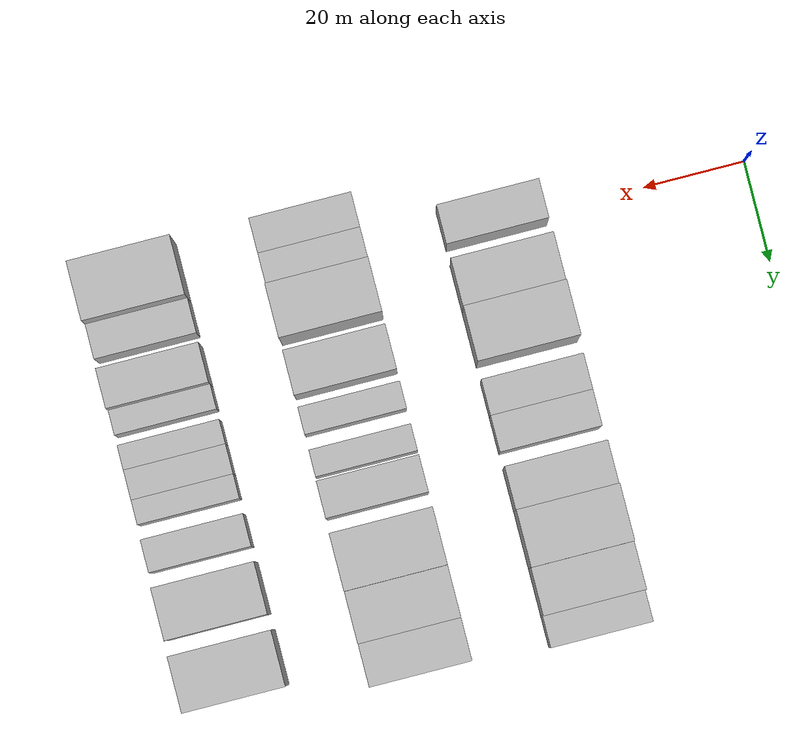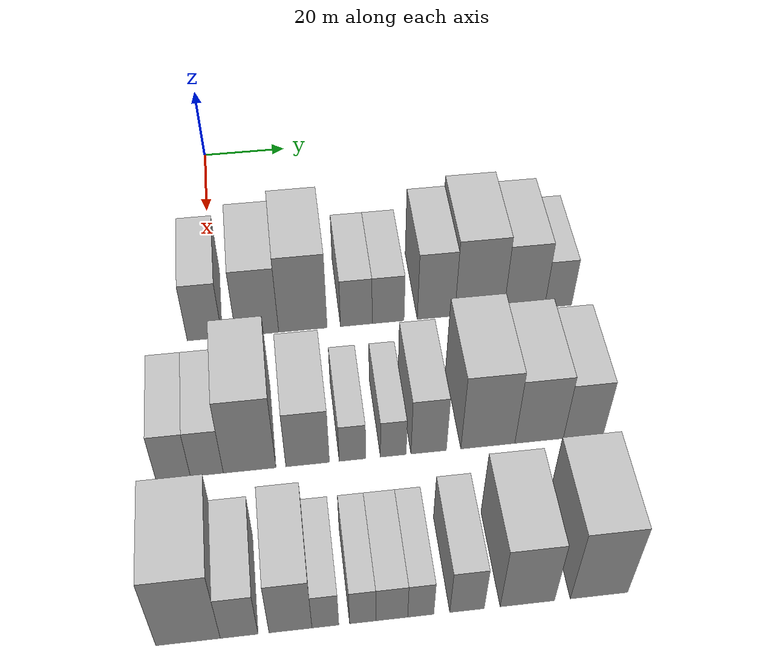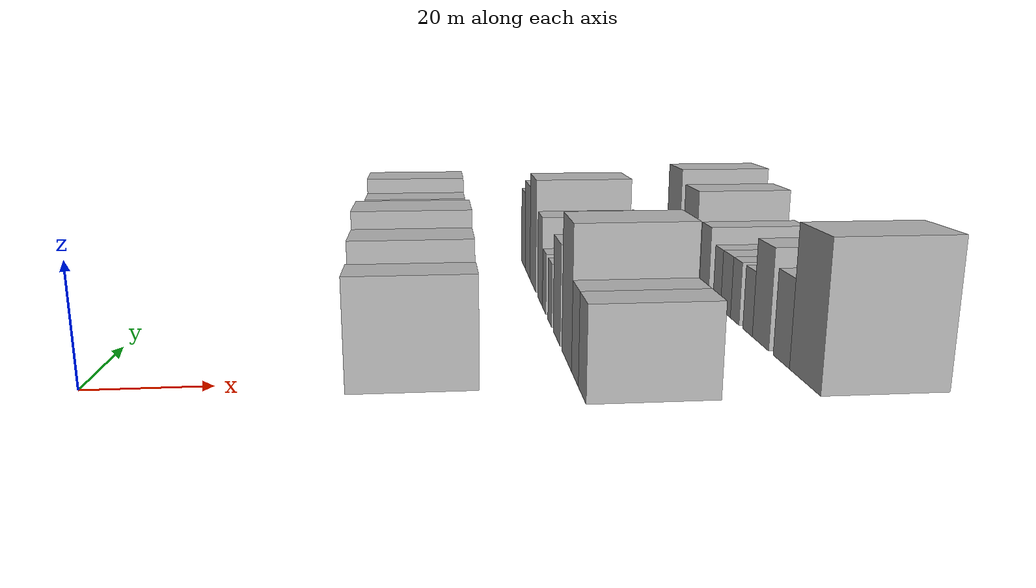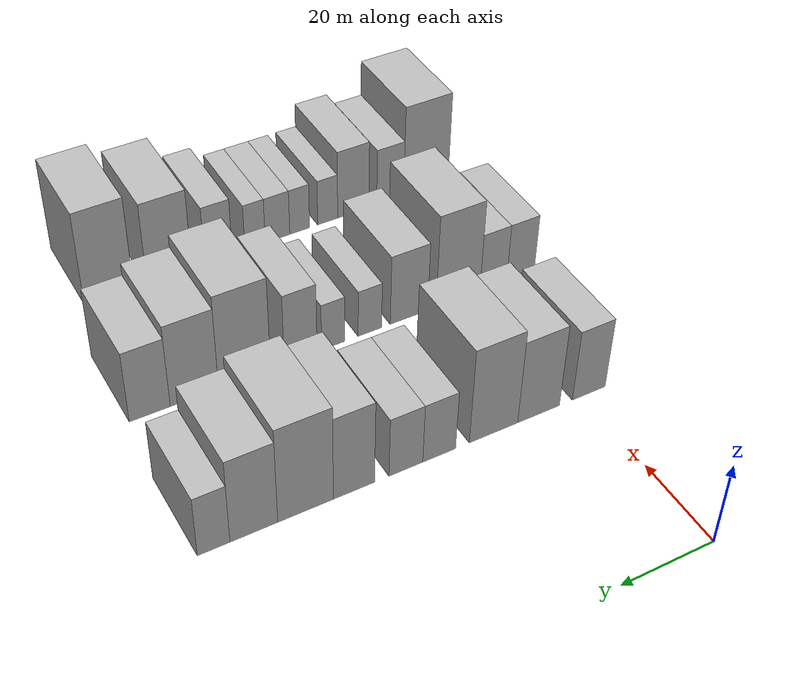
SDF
<sdf version="1.6">
 <world name="default">
  <model name="building_39">
   <static>1</static>
   <pose>50.0000 -1.3939 0 0.000000 0.000000 0.000000</pose>
   <link name="link">
    <pose>0 0 9.00 0 0 0</pose>
    <collision name="collision"><geometry><box><size>20.0000 7.6644 18.0000</size></box></geometry></collision>
    <visual name="visual">
     <cast_shadows>0</cast_shadows>
     <geometry><box><size>20.0000 7.6644 18.0000</size></box></geometry>
     <material>
      <script>
       <uri>model://HANNAS_wall/materials/scripts</uri>
       <uri>model://HANNAS_wall/materials/textures</uri>
       <name>vrc/HANNAS_wall</name>
      </script>
     </material>
    </visual>
   </link>
  </model>
  <model name="building_40">
   <static>1</static>
   <pose>50.0000 10.1830 0 0.000000 0.000000 0.000000</pose>
   <link name="link">
    <pose>0 0 10.50 0 0 0</pose>
    <collision name="collision"><geometry><box><size>20.0000 9.4892 21.0000</size></box></geometry></collision>
    <visual name="visual">
     <cast_shadows>0</cast_shadows>
     <geometry><box><size>20.0000 9.4892 21.0000</size></box></geometry>
     <material>
      <script>
       <uri>model://HANNAS_wall/materials/scripts</uri>
       <uri>model://HANNAS_wall/materials/textures</uri>
       <name>vrc/HANNAS_wall</name>
      </script>
     </material>
    </visual>
   </link>
  </model>
  <model name="building_41">
   <static>1</static>
   <pose>50.0000 20.3024 0 0.000000 0.000000 0.000000</pose>
   <link name="link">
    <pose>0 0 12.00 0 0 0</pose>
    <collision name="collision"><geometry><box><size>20.0000 10.7497 24.0000</size></box></geometry></collision>
    <visual name="visual">
     <cast_shadows>0</cast_shadows>
     <geometry><box><size>20.0000 10.7497 24.0000</size></box></geometry>
     <material>
      <script>
       <uri>model://HANNAS_wall/materials/scripts</uri>
       <uri>model://HANNAS_wall/materials/textures</uri>
       <name>vrc/HANNAS_wall</name>
      </script>
     </material>
    </visual>
   </link>
  </model>
  <model name="building_42">
   <static>1</static>
   <pose>50.0000 32.2145 0 0.000000 0.000000 0.000000</pose>
   <link name="link">
    <pose>0 0 7.50 0 0 0</pose>
    <collision name="collision"><geometry><box><size>20.0000 7.0744 15.0000</size></box></geometry></collision>
    <visual name="visual">
     <cast_shadows>0</cast_shadows>
     <geometry><box><size>20.0000 7.0744 15.0000</size></box></geometry>
     <material>
      <script>
       <uri>model://HANNAS_wall/materials/scripts</uri>
       <uri>model://HANNAS_wall/materials/textures</uri>
       <name>vrc/HANNAS_wall</name>
      </script>
     </material>
    </visual>
   </link>
  </model>
  <model name="building_43">
   <static>1</static>
   <pose>50.0000 39.3322 0 0.000000 0.000000 0.000000</pose>
   <link name="link">
    <pose>0 0 7.50 0 0 0</pose>
    <collision name="collision"><geometry><box><size>20.0000 7.1611 15.0000</size></box></geometry></collision>
    <visual name="visual">
     <cast_shadows>0</cast_shadows>
     <geometry><box><size>20.0000 7.1611 15.0000</size></box></geometry>
     <material>
      <script>
       <uri>model://HANNAS_wall/materials/scripts</uri>
       <uri>model://HANNAS_wall/materials/textures</uri>
       <name>vrc/HANNAS_wall</name>
      </script>
     </material>
    </visual>
   </link>
  </model>
  <model name="building_44">
   <static>1</static>
   <pose>50.0000 50.1427 0 0.000000 0.000000 0.000000</pose>
   <link name="link">
    <pose>0 0 10.50 0 0 0</pose>
    <collision name="collision"><geometry><box><size>20.0000 8.4600 21.0000</size></box></geometry></collision>
    <visual name="visual">
     <cast_shadows>0</cast_shadows>
     <geometry><box><size>20.0000 8.4600 21.0000</size></box></geometry>
     <material>
      <script>
       <uri>model://HANNAS_wall/materials/scripts</uri>
       <uri>model://HANNAS_wall/materials/textures</uri>
       <name>vrc/HANNAS_wall</name>
      </script>
     </material>
    </visual>
   </link>
  </model>
  <model name="building_45">
   <static>1</static>
   <pose>50.0000 59.9596 0 0.000000 0.000000 0.000000</pose>
   <link name="link">
    <pose>0 0 12.00 0 0 0</pose>
    <collision name="collision"><geometry><box><size>20.0000 11.1738 24.0000</size></box></geometry></collision>
    <visual name="visual">
     <cast_shadows>0</cast_shadows>
     <geometry><box><size>20.0000 11.1738 24.0000</size></box></geometry>
     <material>
      <script>
       <uri>model://HANNAS_wall/materials/scripts</uri>
       <uri>model://HANNAS_wall/materials/textures</uri>
       <name>vrc/HANNAS_wall</name>
      </script>
     </material>
    </visual>
   </link>
  </model>
  <model name="building_46">
   <static>1</static>
   <pose>50.0000 70.2104 0 0.000000 0.000000 0.000000</pose>
   <link name="link">
    <pose>0 0 10.50 0 0 0</pose>
    <collision name="collision"><geometry><box><size>20.0000 9.3278 21.0000</size></box></geometry></collision>
    <visual name="visual">
     <cast_shadows>0</cast_shadows>
     <geometry><box><size>20.0000 9.3278 21.0000</size></box></geometry>
     <material>
      <script>
       <uri>model://HANNAS_wall/materials/scripts</uri>
       <uri>model://HANNAS_wall/materials/textures</uri>
       <name>vrc/HANNAS_wall</name>
      </script>
     </material>
    </visual>
   </link>
  </model>
  <model name="building_47">
   <static>1</static>
   <pose>50.0000 77.9958 0 0.000000 0.000000 0.000000</pose>
   <link name="link">
    <pose>0 0 7.50 0 0 0</pose>
    <collision name="collision"><geometry><box><size>20.0000 6.2429 15.0000</size></box></geometry></collision>
    <visual name="visual">
     <cast_shadows>0</cast_shadows>
     <geometry><box><size>20.0000 6.2429 15.0000</size></box></geometry>
     <material>
      <script>
       <uri>model://HANNAS_wall/materials/scripts</uri>
       <uri>model://HANNAS_wall/materials/textures</uri>
       <name>vrc/HANNAS_wall</name>
      </script>
     </material>
    </visual>
   </link>
  </model>
  <model name="building_119">
   <static>1</static>
   <pose>85.0000 -8.5208 0 0.000000 0.000000 0.000000</pose>
   <link name="link">
    <pose>0 0 7.50 0 0 0</pose>
    <collision name="collision"><geometry><box><size>20.0000 6.8696 15.0000</size></box></geometry></collision>
    <visual name="visual">
     <cast_shadows>0</cast_shadows>
     <geometry><box><size>20.0000 6.8696 15.0000</size></box></geometry>
     <material>
      <script>
       <uri>model://HANNAS_wall/materials/scripts</uri>
       <uri>model://HANNAS_wall/materials/textures</uri>
       <name>vrc/HANNAS_wall</name>
      </script>
     </material>
    </visual>
   </link>
  </model>
  <model name="building_120">
   <static>1</static>
   <pose>85.0000 -1.7796 0 0.000000 0.000000 0.000000</pose>
   <link name="link">
    <pose>0 0 7.50 0 0 0</pose>
    <collision name="collision"><geometry><box><size>20.0000 6.6127 15.0000</size></box></geometry></collision>
    <visual name="visual">
     <cast_shadows>0</cast_shadows>
     <geometry><box><size>20.0000 6.6127 15.0000</size></box></geometry>
     <material>
      <script>
       <uri>model://HANNAS_wall/materials/scripts</uri>
       <uri>model://HANNAS_wall/materials/textures</uri>
       <name>vrc/HANNAS_wall</name>
      </script>
     </material>
    </visual>
   </link>
  </model>
  <model name="building_121">
   <static>1</static>
   <pose>85.0000 6.8212 0 0.000000 0.000000 0.000000</pose>
   <link name="link">
    <pose>0 0 12.00 0 0 0</pose>
    <collision name="collision"><geometry><box><size>20.0000 10.5889 24.0000</size></box></geometry></collision>
    <visual name="visual">
     <cast_shadows>0</cast_shadows>
     <geometry><box><size>20.0000 10.5889 24.0000</size></box></geometry>
     <material>
      <script>
       <uri>model://HANNAS_wall/materials/scripts</uri>
       <uri>model://HANNAS_wall/materials/textures</uri>
       <name>vrc/HANNAS_wall</name>
      </script>
     </material>
    </visual>
   </link>
  </model>
  <model name="building_122">
   <static>1</static>
   <pose>85.0000 18.5259 0 0.000000 0.000000 0.000000</pose>
   <link name="link">
    <pose>0 0 9.00 0 0 0</pose>
    <collision name="collision"><geometry><box><size>20.0000 8.8205 18.0000</size></box></geometry></collision>
    <visual name="visual">
     <cast_shadows>0</cast_shadows>
     <geometry><box><size>20.0000 8.8205 18.0000</size></box></geometry>
     <material>
      <script>
       <uri>model://HANNAS_wall/materials/scripts</uri>
       <uri>model://HANNAS_wall/materials/textures</uri>
       <name>vrc/HANNAS_wall</name>
      </script>
     </material>
    </visual>
   </link>
  </model>
  <model name="building_123">
   <static>1</static>
   <pose>85.0000 27.6398 0 0.000000 0.000000 0.000000</pose>
   <link name="link">
    <pose>0 0 6.00 0 0 0</pose>
    <collision name="collision"><geometry><box><size>20.0000 5.4074 12.0000</size></box></geometry></collision>
    <visual name="visual">
     <cast_shadows>0</cast_shadows>
     <geometry><box><size>20.0000 5.4074 12.0000</size></box></geometry>
     <material>
      <script>
       <uri>model://HANNAS_wall/materials/scripts</uri>
       <uri>model://HANNAS_wall/materials/textures</uri>
       <name>vrc/HANNAS_wall</name>
      </script>
     </material>
    </visual>
   </link>
  </model>
  <model name="building_124">
   <static>1</static>
   <pose>85.0000 35.9796 0 0.000000 0.000000 0.000000</pose>
   <link name="link">
    <pose>0 0 6.00 0 0 0</pose>
    <collision name="collision"><geometry><box><size>20.0000 5.2722 12.0000</size></box></geometry></collision>
    <visual name="visual">
     <cast_shadows>0</cast_shadows>
     <geometry><box><size>20.0000 5.2722 12.0000</size></box></geometry>
     <material>
      <script>
       <uri>model://HANNAS_wall/materials/scripts</uri>
       <uri>model://HANNAS_wall/materials/textures</uri>
       <name>vrc/HANNAS_wall</name>
      </script>
     </material>
    </visual>
   </link>
  </model>
  <model name="building_125">
   <static>1</static>
   <pose>85.0000 43.2569 0 0.000000 0.000000 0.000000</pose>
   <link name="link">
    <pose>0 0 9.00 0 0 0</pose>
    <collision name="collision"><geometry><box><size>20.0000 7.2823 18.0000</size></box></geometry></collision>
    <visual name="visual">
     <cast_shadows>0</cast_shadows>
     <geometry><box><size>20.0000 7.2823 18.0000</size></box></geometry>
     <material>
      <script>
       <uri>model://HANNAS_wall/materials/scripts</uri>
       <uri>model://HANNAS_wall/materials/textures</uri>
       <name>vrc/HANNAS_wall</name>
      </script>
     </material>
    </visual>
   </link>
  </model>
  <model name="building_126">
   <static>1</static>
   <pose>85.0000 55.5055 0 0.000000 0.000000 0.000000</pose>
   <link name="link">
    <pose>0 0 12.00 0 0 0</pose>
    <collision name="collision"><geometry><box><size>20.0000 11.2148 24.0000</size></box></geometry></collision>
    <visual name="visual">
     <cast_shadows>0</cast_shadows>
     <geometry><box><size>20.0000 11.2148 24.0000</size></box></geometry>
     <material>
      <script>
       <uri>model://HANNAS_wall/materials/scripts</uri>
       <uri>model://HANNAS_wall/materials/textures</uri>
       <name>vrc/HANNAS_wall</name>
      </script>
     </material>
    </visual>
   </link>
  </model>
  <model name="building_127">
   <static>1</static>
   <pose>85.0000 66.1872 0 0.000000 0.000000 0.000000</pose>
   <link name="link">
    <pose>0 0 10.50 0 0 0</pose>
    <collision name="collision"><geometry><box><size>20.0000 10.1487 21.0000</size></box></geometry></collision>
    <visual name="visual">
     <cast_shadows>0</cast_shadows>
     <geometry><box><size>20.0000 10.1487 21.0000</size></box></geometry>
     <material>
      <script>
       <uri>model://HANNAS_wall/materials/scripts</uri>
       <uri>model://HANNAS_wall/materials/textures</uri>
       <name>vrc/HANNAS_wall</name>
      </script>
     </material>
    </visual>
   </link>
  </model>
  <model name="building_128">
   <static>1</static>
   <pose>85.0000 75.4717 0 0.000000 0.000000 0.000000</pose>
   <link name="link">
    <pose>0 0 9.00 0 0 0</pose>
    <collision name="collision"><geometry><box><size>20.0000 8.4203 18.0000</size></box></geometry></collision>
    <visual name="visual">
     <cast_shadows>0</cast_shadows>
     <geometry><box><size>20.0000 8.4203 18.0000</size></box></geometry>
     <material>
      <script>
       <uri>model://HANNAS_wall/materials/scripts</uri>
       <uri>model://HANNAS_wall/materials/textures</uri>
       <name>vrc/HANNAS_wall</name>
      </script>
     </material>
    </visual>
   </link>
  </model>
  <model name="building_192">
   <static>1</static>
   <pose>120.0000 -6.0105 0 0.000000 0.000000 0.000000</pose>
   <link name="link">
    <pose>0 0 12.00 0 0 0</pose>
    <collision name="collision"><geometry><box><size>20.0000 11.6139 24.0000</size></box></geometry></collision>
    <visual name="visual">
     <cast_shadows>0</cast_shadows>
     <geometry><box><size>20.0000 11.6139 24.0000</size></box></geometry>
     <material>
      <script>
       <uri>model://HANNAS_wall/materials/scripts</uri>
       <uri>model://HANNAS_wall/materials/textures</uri>
       <name>vrc/HANNAS_wall</name>
      </script>
     </material>
    </visual>
   </link>
  </model>
  <model name="building_193">
   <static>1</static>
   <pose>120.0000 3.2212 0 0.000000 0.000000 0.000000</pose>
   <link name="link">
    <pose>0 0 7.50 0 0 0</pose>
    <collision name="collision"><geometry><box><size>20.0000 6.8496 15.0000</size></box></geometry></collision>
    <visual name="visual">
     <cast_shadows>0</cast_shadows>
     <geometry><box><size>20.0000 6.8496 15.0000</size></box></geometry>
     <material>
      <script>
       <uri>model://HANNAS_wall/materials/scripts</uri>
       <uri>model://HANNAS_wall/materials/textures</uri>
       <name>vrc/HANNAS_wall</name>
      </script>
     </material>
    </visual>
   </link>
  </model>
  <model name="building_194">
   <static>1</static>
   <pose>120.0000 12.5648 0 0.000000 0.000000 0.000000</pose>
   <link name="link">
    <pose>0 0 9.00 0 0 0</pose>
    <collision name="collision"><geometry><box><size>20.0000 7.8376 18.0000</size></box></geometry></collision>
    <visual name="visual">
     <cast_shadows>0</cast_shadows>
     <geometry><box><size>20.0000 7.8376 18.0000</size></box></geometry>
     <material>
      <script>
       <uri>model://HANNAS_wall/materials/scripts</uri>
       <uri>model://HANNAS_wall/materials/textures</uri>
       <name>vrc/HANNAS_wall</name>
      </script>
     </material>
    </visual>
   </link>
  </model>
  <model name="building_195">
   <static>1</static>
   <pose>120.0000 18.9459 0 0.000000 0.000000 0.000000</pose>
   <link name="link">
    <pose>0 0 6.00 0 0 0</pose>
    <collision name="collision"><geometry><box><size>20.0000 4.9245 12.0000</size></box></geometry></collision>
    <visual name="visual">
     <cast_shadows>0</cast_shadows>
     <geometry><box><size>20.0000 4.9245 12.0000</size></box></geometry>
     <material>
      <script>
       <uri>model://HANNAS_wall/materials/scripts</uri>
       <uri>model://HANNAS_wall/materials/textures</uri>
       <name>vrc/HANNAS_wall</name>
      </script>
     </material>
    </visual>
   </link>
  </model>
  <model name="building_196">
   <static>1</static>
   <pose>120.0000 25.8182 0 0.000000 0.000000 0.000000</pose>
   <link name="link">
    <pose>0 0 6.00 0 0 0</pose>
    <collision name="collision"><geometry><box><size>20.0000 4.8202 12.0000</size></box></geometry></collision>
    <visual name="visual">
     <cast_shadows>0</cast_shadows>
     <geometry><box><size>20.0000 4.8202 12.0000</size></box></geometry>
     <material>
      <script>
       <uri>model://HANNAS_wall/materials/scripts</uri>
       <uri>model://HANNAS_wall/materials/textures</uri>
       <name>vrc/HANNAS_wall</name>
      </script>
     </material>
    </visual>
   </link>
  </model>
  <model name="building_197">
   <static>1</static>
   <pose>120.0000 31.1744 0 0.000000 0.000000 0.000000</pose>
   <link name="link">
    <pose>0 0 6.00 0 0 0</pose>
    <collision name="collision"><geometry><box><size>20.0000 5.8922 12.0000</size></box></geometry></collision>
    <visual name="visual">
     <cast_shadows>0</cast_shadows>
     <geometry><box><size>20.0000 5.8922 12.0000</size></box></geometry>
     <material>
      <script>
       <uri>model://HANNAS_wall/materials/scripts</uri>
       <uri>model://HANNAS_wall/materials/textures</uri>
       <name>vrc/HANNAS_wall</name>
      </script>
     </material>
    </visual>
   </link>
  </model>
  <model name="building_198">
   <static>1</static>
   <pose>120.0000 36.5406 0 0.000000 0.000000 0.000000</pose>
   <link name="link">
    <pose>0 0 6.00 0 0 0</pose>
    <collision name="collision"><geometry><box><size>20.0000 4.8403 12.0000</size></box></geometry></collision>
    <visual name="visual">
     <cast_shadows>0</cast_shadows>
     <geometry><box><size>20.0000 4.8403 12.0000</size></box></geometry>
     <material>
      <script>
       <uri>model://HANNAS_wall/materials/scripts</uri>
       <uri>model://HANNAS_wall/materials/textures</uri>
       <name>vrc/HANNAS_wall</name>
      </script>
     </material>
    </visual>
   </link>
  </model>
  <model name="building_199">
   <static>1</static>
   <pose>120.0000 45.1717 0 0.000000 0.000000 0.000000</pose>
   <link name="link">
    <pose>0 0 7.50 0 0 0</pose>
    <collision name="collision"><geometry><box><size>20.0000 6.4218 15.0000</size></box></geometry></collision>
    <visual name="visual">
     <cast_shadows>0</cast_shadows>
     <geometry><box><size>20.0000 6.4218 15.0000</size></box></geometry>
     <material>
      <script>
       <uri>model://HANNAS_wall/materials/scripts</uri>
       <uri>model://HANNAS_wall/materials/textures</uri>
       <name>vrc/HANNAS_wall</name>
      </script>
     </material>
    </visual>
   </link>
  </model>
  <model name="building_200">
   <static>1</static>
   <pose>120.0000 56.5029 0 0.000000 0.000000 0.000000</pose>
   <link name="link">
    <pose>0 0 10.50 0 0 0</pose>
    <collision name="collision"><geometry><box><size>20.0000 10.2407 21.0000</size></box></geometry></collision>
    <visual name="visual">
     <cast_shadows>0</cast_shadows>
     <geometry><box><size>20.0000 10.2407 21.0000</size></box></geometry>
     <material>
      <script>
       <uri>model://HANNAS_wall/materials/scripts</uri>
       <uri>model://HANNAS_wall/materials/textures</uri>
       <name>vrc/HANNAS_wall</name>
      </script>
     </material>
    </visual>
   </link>
  </model>
  <model name="building_201">
   <static>1</static>
   <pose>120.0000 70.0821 0 0.000000 0.000000 0.000000</pose>
   <link name="link">
    <pose>0 0 12.00 0 0 0</pose>
    <collision name="collision"><geometry><box><size>20.0000 10.9176 24.0000</size></box></geometry></collision>
    <visual name="visual">
     <cast_shadows>0</cast_shadows>
     <geometry><box><size>20.0000 10.9176 24.0000</size></box></geometry>
     <material>
      <script>
       <uri>model://HANNAS_wall/materials/scripts</uri>
       <uri>model://HANNAS_wall/materials/textures</uri>
       <name>vrc/HANNAS_wall</name>
      </script>
     </material>
    </visual>
   </link>
  </model>
 </world>
</sdf>
